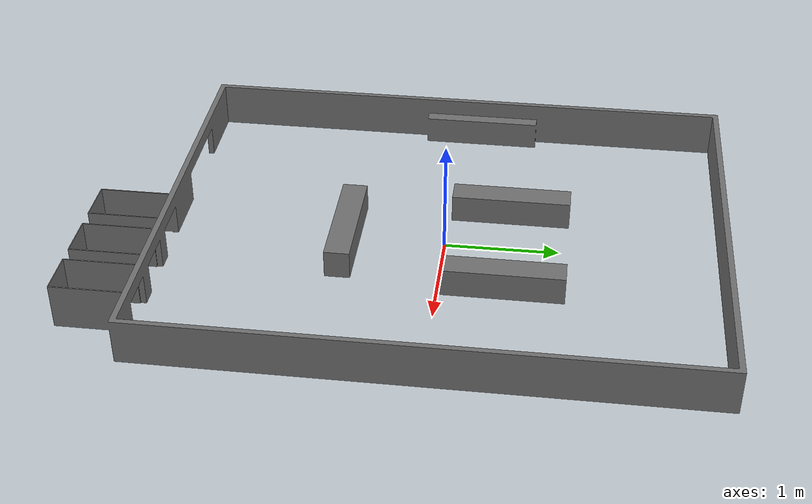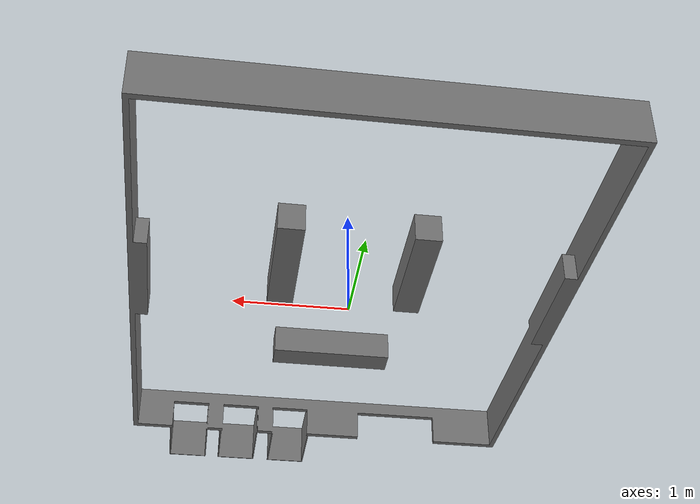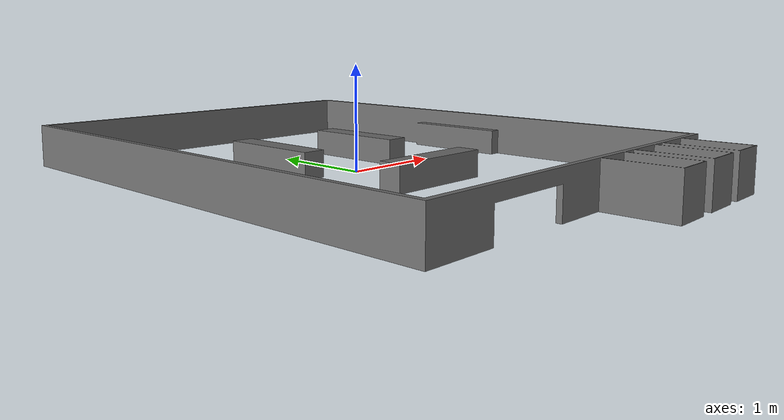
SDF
<?xml version="1.0" ?>
<sdf version="1.6">
  <model name="map">
    <static>true</static>
    <link name="link">

      <visual name="visual">
        <pose>0 0 0 0 0 0</pose>
        <geometry>
          <mesh>
            <uri>./meshes/map.stl</uri>
            <scale>0.001 0.001 0.001</scale>
          </mesh>
        </geometry>
        <material>
          <ambient>0.44 0.44 0.44 1</ambient>
          <diffuse>0.44 0.44 0.44 1</diffuse>
          <specular>0.1 0.1 0.1 1</specular>
        </material>
      </visual>

      <collision name="collision">
        <pose>0 0 0 0 0 0</pose>
        <geometry>
          <mesh>
            <uri>./meshes/map.stl</uri>
            <scale>0.001 0.001 0.001</scale>
          </mesh>
        </geometry>
      </collision>

    </link>
  </model>
</sdf>
